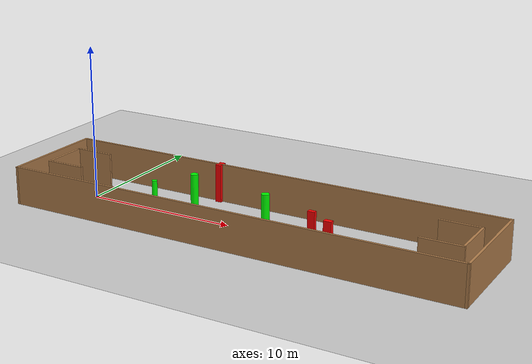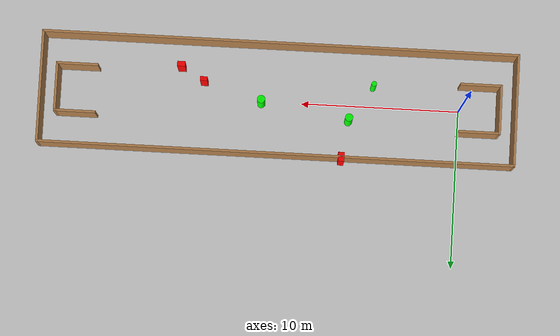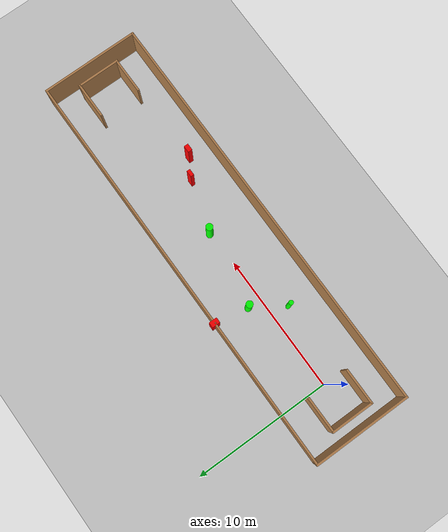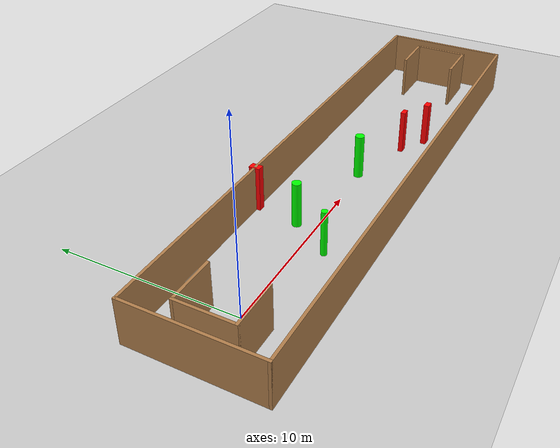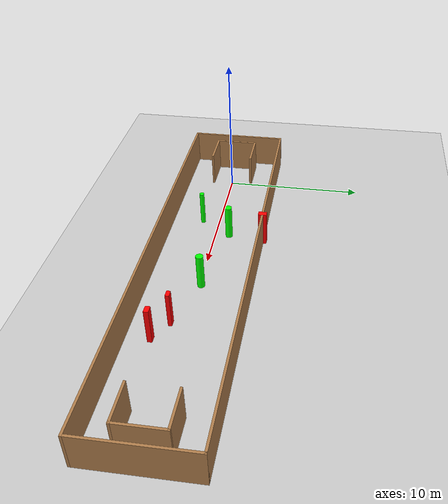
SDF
<sdf version="1.7">
 <world name="default">
  <light name="sun" type="directional">
   <pose>0 0 10 0 -0 0</pose>
   <diffuse>0.8 0.8 0.8 1</diffuse>
   <specular>0.2 0.2 0.2 1</specular>
   <attenuation>
    <range>1000</range>
    <constant>0.9</constant>
    <linear>0.01</linear>
    <quadratic>0.001</quadratic>
   </attenuation>
   <direction>-0.5 0.1 -0.9</direction>
   <spot><inner_angle>0</inner_angle><outer_angle>0</outer_angle><falloff>0</falloff></spot>
  </light>
  <model name="ground_plane">
   <static>1</static>
   <link name="link">
    <collision name="collision">
     <geometry><plane><normal>0 0 1</normal><size>100 100</size></plane></geometry>
     <surface>
      <contact><collide_bitmask>65535</collide_bitmask></contact>
      <friction><ode><mu>100</mu><mu2>50</mu2></ode></friction>
     </surface>
    </collision>
    <visual name="visual">
     <cast_shadows>0</cast_shadows>
     <geometry><plane><normal>0 0 1</normal><size>100 100</size></plane></geometry>
     <material>
      <script><uri>file://media/materials/scripts/gazebo.material</uri><name>Gazebo/Grey</name></script>
     </material>
    </visual>
   </link>
  </model>
  <gravity>0 0 -9.8</gravity>
  <magnetic_field>6e-06 2.3e-05 -4.2e-05</magnetic_field>
  <atmosphere type="adiabatic"/>
  <physics type="ode">
   <max_step_size>0.001</max_step_size>
   <real_time_factor>1</real_time_factor>
   <real_time_update_rate>1000</real_time_update_rate>
  </physics>
  <scene><ambient>0.4 0.4 0.4 1</ambient><background>0.7 0.7 0.7 1</background><shadows>1</shadows></scene>
  <spherical_coordinates>
   <surface_model>EARTH_WGS84</surface_model>
   <latitude_deg>0</latitude_deg>
   <longitude_deg>0</longitude_deg>
   <elevation>0</elevation>
   <heading_deg>0</heading_deg>
  </spherical_coordinates>
  <model name="my_base_walls">
   <link name="Wall_0">
    <collision name="Wall_0_Collision">
     <geometry><box><size>7.15 0.15 2.5</size></box></geometry>
     <pose>0 0 1.25 0 -0 0</pose>
    </collision>
    <visual name="Wall_0_Visual">
     <pose>0 0 1.25 0 -0 0</pose>
     <geometry><box><size>7.15 0.15 2.5</size></box></geometry>
     <material>
      <script><uri>file://media/materials/scripts/gazebo.material</uri><name>Gazebo/Wood</name></script>
      <ambient>1 1 1 1</ambient>
     </material>
     <meta><layer>0</layer></meta>
    </visual>
    <pose>-15 0 0 0 -0 1.5708</pose>
   </link>
   <link name="Wall_10">
    <collision name="Wall_10_Collision">
     <geometry><box><size>2.65 0.15 2.5</size></box></geometry>
     <pose>0 0 1.25 0 -0 0</pose>
    </collision>
    <visual name="Wall_10_Visual">
     <pose>0 0 1.25 0 -0 0</pose>
     <geometry><box><size>2.65 0.15 2.5</size></box></geometry>
     <material>
      <script><uri>file://media/materials/scripts/gazebo.material</uri><name>Gazebo/Wood</name></script>
      <ambient>1 1 1 1</ambient>
     </material>
     <meta><layer>0</layer></meta>
    </visual>
    <pose>-12.75 -1.5 0 0 -0 0</pose>
   </link>
   <link name="Wall_12">
    <collision name="Wall_12_Collision">
     <geometry><box><size>2.65 0.15 2.5</size></box></geometry>
     <pose>0 0 1.25 0 -0 0</pose>
    </collision>
    <visual name="Wall_12_Visual">
     <pose>0 0 1.25 0 -0 0</pose>
     <geometry><box><size>2.65 0.15 2.5</size></box></geometry>
     <material>
      <script><uri>file://media/materials/scripts/gazebo.material</uri><name>Gazebo/Wood</name></script>
      <ambient>1 1 1 1</ambient>
     </material>
     <meta><layer>0</layer></meta>
    </visual>
    <pose>-12.75 1.5 0 0 -0 0</pose>
   </link>
   <link name="Wall_14">
    <collision name="Wall_14_Collision">
     <geometry><box><size>3.15 0.15 2.5</size></box></geometry>
     <pose>0 0 1.25 0 -0 0</pose>
    </collision>
    <visual name="Wall_14_Visual">
     <pose>0 0 1.25 0 -0 0</pose>
     <geometry><box><size>3.15 0.15 2.5</size></box></geometry>
     <material>
      <script><uri>file://media/materials/scripts/gazebo.material</uri><name>Gazebo/Wood</name></script>
      <ambient>1 1 1 1</ambient>
     </material>
     <meta><layer>0</layer></meta>
    </visual>
    <pose>14 0 0 0 -0 -1.5708</pose>
   </link>
   <link name="Wall_15">
    <collision name="Wall_15_Collision">
     <geometry><box><size>2.65 0.15 2.5</size></box></geometry>
     <pose>0 0 1.25 0 -0 0</pose>
    </collision>
    <visual name="Wall_15_Visual">
     <pose>0 0 1.25 0 -0 0</pose>
     <geometry><box><size>2.65 0.15 2.5</size></box></geometry>
     <material>
      <script><uri>file://media/materials/scripts/gazebo.material</uri><name>Gazebo/Wood</name></script>
      <ambient>1 1 1 1</ambient>
     </material>
     <meta><layer>0</layer></meta>
    </visual>
    <pose>12.75 -1.5 0 0 -0 3.14159</pose>
   </link>
   <link name="Wall_17">
    <collision name="Wall_17_Collision">
     <geometry><box><size>2.65 0.15 2.5</size></box></geometry>
     <pose>0 0 1.25 0 -0 0</pose>
    </collision>
    <visual name="Wall_17_Visual">
     <pose>0 0 1.25 0 -0 0</pose>
     <geometry><box><size>2.65 0.15 2.5</size></box></geometry>
     <material>
      <script><uri>file://media/materials/scripts/gazebo.material</uri><name>Gazebo/Wood</name></script>
      <ambient>1 1 1 1</ambient>
     </material>
     <meta><layer>0</layer></meta>
    </visual>
    <pose>12.75 1.5 0 0 -0 3.14159</pose>
   </link>
   <link name="Wall_2">
    <collision name="Wall_2_Collision">
     <geometry><box><size>30.15 0.15 2.5</size></box></geometry>
     <pose>0 0 1.25 0 -0 0</pose>
    </collision>
    <visual name="Wall_2_Visual">
     <pose>0 0 1.25 0 -0 0</pose>
     <geometry><box><size>30.15 0.15 2.5</size></box></geometry>
     <material>
      <script><uri>file://media/materials/scripts/gazebo.material</uri><name>Gazebo/Wood</name></script>
      <ambient>1 1 1 1</ambient>
     </material>
     <meta><layer>0</layer></meta>
    </visual>
    <pose>-0 -3.5 0 0 -0 0</pose>
   </link>
   <link name="Wall_4">
    <collision name="Wall_4_Collision">
     <geometry><box><size>30.15 0.15 2.5</size></box></geometry>
     <pose>0 0 1.25 0 -0 0</pose>
    </collision>
    <visual name="Wall_4_Visual">
     <pose>0 0 1.25 0 -0 0</pose>
     <geometry><box><size>30.15 0.15 2.5</size></box></geometry>
     <material>
      <script><uri>file://media/materials/scripts/gazebo.material</uri><name>Gazebo/Wood</name></script>
      <ambient>1 1 1 1</ambient>
     </material>
     <meta><layer>0</layer></meta>
    </visual>
    <pose>-0 3.5 0 0 -0 0</pose>
   </link>
   <link name="Wall_6">
    <collision name="Wall_6_Collision">
     <geometry><box><size>7.15 0.15 2.5</size></box></geometry>
     <pose>0 0 1.25 0 -0 0</pose>
    </collision>
    <visual name="Wall_6_Visual">
     <pose>0 0 1.25 0 -0 0</pose>
     <geometry><box><size>7.15 0.15 2.5</size></box></geometry>
     <material>
      <script><uri>file://media/materials/scripts/gazebo.material</uri><name>Gazebo/Wood</name></script>
      <ambient>1 1 1 1</ambient>
     </material>
     <meta><layer>0</layer></meta>
    </visual>
    <pose>15 0 0 0 -0 -1.5708</pose>
   </link>
   <link name="Wall_9">
    <collision name="Wall_9_Collision">
     <geometry><box><size>3.15 0.15 2.5</size></box></geometry>
     <pose>0 0 1.25 0 -0 0</pose>
    </collision>
    <visual name="Wall_9_Visual">
     <pose>0 0 1.25 0 -0 0</pose>
     <geometry><box><size>3.15 0.15 2.5</size></box></geometry>
     <material>
      <script><uri>file://media/materials/scripts/gazebo.material</uri><name>Gazebo/Wood</name></script>
      <ambient>1 1 1 1</ambient>
     </material>
     <meta><layer>0</layer></meta>
    </visual>
    <pose>-14 0 0 0 -0 -1.5708</pose>
   </link>
   <static>1</static>
   <pose>11.5 0 0 0 -0 0</pose>
  </model>
  <model name="cylinder1">
   <static>1</static>
   <link name="link">
    <inertial>
     <mass>1</mass>
     <inertia><ixx>0.5</ixx><ixy>0</ixy><ixz>0</ixz><iyy>0.5</iyy><iyz>0</iyz><izz>1</izz></inertia>
    </inertial>
    <collision name="collision">
     <geometry><cylinder><radius>0.2519027143709605</radius><length>2.5</length></cylinder></geometry>
    </collision>
    <visual name="visual">
     <geometry><cylinder><radius>0.2519027143709605</radius><length>2.5</length></cylinder></geometry>
     <material>
      <ambient>0 1 0 1</ambient>
      <diffuse>0 1 0 1</diffuse>
      <specular>0.1 0.1 0.1 1</specular>
      <emissive>0 0 0 0</emissive>
     </material>
    </visual>
   </link>
   <pose>12.561577622278417 0.13358745035229935 1.25 0 0 0</pose>
  </model>
  <model name="cylinder2">
   <static>1</static>
   <link name="link">
    <inertial>
     <mass>1</mass>
     <inertia><ixx>0.5</ixx><ixy>0</ixy><ixz>0</ixz><iyy>0.5</iyy><iyz>0</iyz><izz>1</izz></inertia>
    </inertial>
    <collision name="collision">
     <geometry><cylinder><radius>0.24749237558312553</radius><length>2.5</length></cylinder></geometry>
    </collision>
    <visual name="visual">
     <geometry><cylinder><radius>0.24749237558312553</radius><length>2.5</length></cylinder></geometry>
     <material>
      <ambient>0 1 0 1</ambient>
      <diffuse>0 1 0 1</diffuse>
      <specular>0.1 0.1 0.1 1</specular>
      <emissive>0 0 0 0</emissive>
     </material>
    </visual>
   </link>
   <pose>6.975069315574151 1.0051768442875861 1.25 0 0 0</pose>
  </model>
  <model name="cylinder3">
   <static>1</static>
   <link name="link">
    <inertial>
     <mass>1</mass>
     <inertia><ixx>0.5</ixx><ixy>0</ixy><ixz>0</ixz><iyy>0.5</iyy><iyz>0</iyz><izz>1</izz></inertia>
    </inertial>
    <collision name="collision">
     <geometry><cylinder><radius>0.16618159875322067</radius><length>2.5</length></cylinder></geometry>
    </collision>
    <visual name="visual">
     <geometry><cylinder><radius>0.16618159875322067</radius><length>2.5</length></cylinder></geometry>
     <material>
      <ambient>0 1 0 1</ambient>
      <diffuse>0 1 0 1</diffuse>
      <specular>0.1 0.1 0.1 1</specular>
      <emissive>0 0 0 0</emissive>
     </material>
    </visual>
   </link>
   <pose>5.505919995673022 -1.2137458836870216 1.25 0 0 0</pose>
  </model>
  <model name="box1">
   <static>1</static>
   <link name="link">
    <inertial>
     <mass>1</mass>
     <inertia><ixx>0.083</ixx><ixy>0</ixy><ixz>0</ixz><iyy>0.083</iyy><iyz>0</iyz><izz>0.083</izz></inertia>
    </inertial>
    <collision name="collision">
     <geometry><box><size>0.45520784114944407 0.2546737823712397 2.5</size></box></geometry>
    </collision>
    <visual name="visual">
     <geometry><box><size>0.45520784114944407 0.2546737823712397 2.5</size></box></geometry>
     <material>
      <ambient>1 0 0 1</ambient>
      <diffuse>1 0 0 1</diffuse>
      <specular>0.1 0.1 0.1 1</specular>
      <emissive>0 0 0 0</emissive>
     </material>
    </visual>
    <sensor name="my_contact" type="contact">
     <contact><collision>box_collision</collision><topic>__default_topic__</topic></contact>
    </sensor>
   </link>
   <pose>16.23640082962843 -0.9767944223955163 1.25 0 0 0</pose>
  </model>
  <model name="box2">
   <static>1</static>
   <link name="link">
    <inertial>
     <mass>1</mass>
     <inertia><ixx>0.083</ixx><ixy>0</ixy><ixz>0</ixz><iyy>0.083</iyy><iyz>0</iyz><izz>0.083</izz></inertia>
    </inertial>
    <collision name="collision">
     <geometry><box><size>0.48890921723862885 0.3108985097255821 2.5</size></box></geometry>
    </collision>
    <visual name="visual">
     <geometry><box><size>0.48890921723862885 0.3108985097255821 2.5</size></box></geometry>
     <material>
      <ambient>1 0 0 1</ambient>
      <diffuse>1 0 0 1</diffuse>
      <specular>0.1 0.1 0.1 1</specular>
      <emissive>0 0 0 0</emissive>
     </material>
    </visual>
    <sensor name="my_contact" type="contact">
     <contact><collision>box_collision</collision><topic>__default_topic__</topic></contact>
    </sensor>
   </link>
   <pose>17.70528918275339 -1.8457945018048112 1.25 0 0 0</pose>
  </model>
  <model name="box3">
   <static>1</static>
   <link name="link">
    <inertial>
     <mass>1</mass>
     <inertia><ixx>0.083</ixx><ixy>0</ixy><ixz>0</ixz><iyy>0.083</iyy><iyz>0</iyz><izz>0.083</izz></inertia>
    </inertial>
    <collision name="collision">
     <geometry><box><size>0.38954613413895955 0.5892886137580452 2.5</size></box></geometry>
    </collision>
    <visual name="visual">
     <geometry><box><size>0.38954613413895955 0.5892886137580452 2.5</size></box></geometry>
     <material>
      <ambient>1 0 0 1</ambient>
      <diffuse>1 0 0 1</diffuse>
      <specular>0.1 0.1 0.1 1</specular>
      <emissive>0 0 0 0</emissive>
     </material>
    </visual>
    <sensor name="my_contact" type="contact">
     <contact><collision>box_collision</collision><topic>__default_topic__</topic></contact>
    </sensor>
   </link>
   <pose>7.3398055446794555 3.4998409407161883 1.25 0 0 0</pose>
  </model>
 </world>
</sdf>
